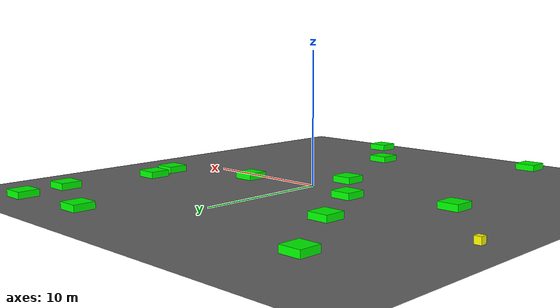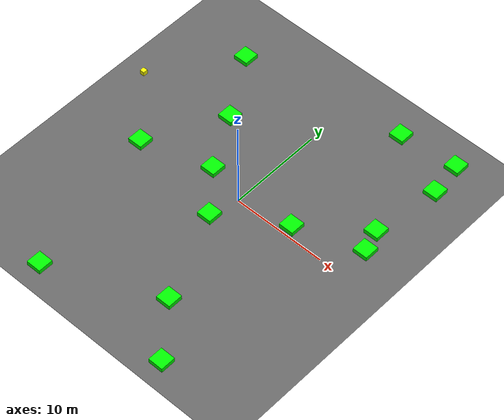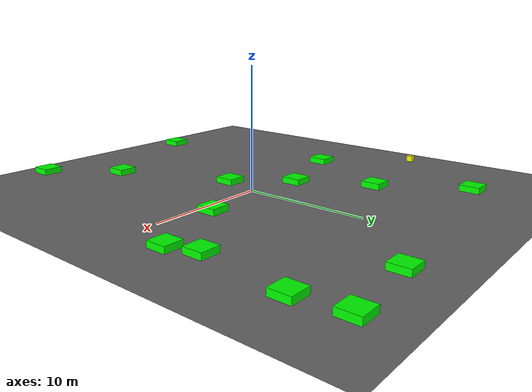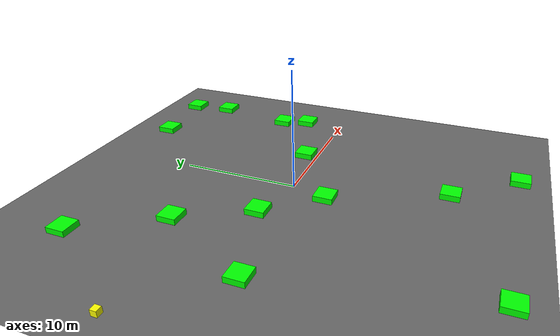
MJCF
<mujoco model="baseline_lvl5_obs14_seed4011">
    <compiler angle="degree" coordinate="local" inertiafromgeom="true"/>
    <option integrator="RK4" timestep="0.01"/>

    <asset>
        <texture builtin="gradient" height="100" rgb1="0.6 0.8 1" rgb2="0 0 0" type="skybox" width="100"/>
        <texture name="floor_texture" type="2d" builtin="checker" width="100" height="100" rgb1="0 0 0" rgb2="0.8 0.8 0.8"/>
        <material name="MatPlane" reflectance="0.5" shininess="1" specular="1" texrepeat="10 10" texture="floor_texture"/>
    </asset>

    <!-- Excluding the contact between the agent and the goal, and the agent and the floor -->
    <contact>
        <exclude body1="agent" body2="goal"/>
        <exclude body1 = "agent" body2 = "floor"/>
    </contact>

    <extension>
        <plugin plugin = "mujoco.pid">
            <instance name = "pid1">
                <config key="kp" value="2"/>
                <config key="ki" value="0"/>
                <config key="kd" value="55"/>
            </instance>
        </plugin>
    </extension>

    <worldbody>
        <light cutoff="100" diffuse="1 1 1" dir="-0 0 -1.3" directional="true" exponent="1" pos="0 0 1.3" specular=".1 .1 .1"/>
        <body name="floor" pos="0 0 0">
            <geom name="floor_geom" type="plane" size="20 20 0.1" material="MatPlane"/>
        </body>

        <!-- Goal -->
        <body name="goal" pos="12.000 -12.000 0">
            <geom name="goal_geom" type="plane" size="0.5 0.5 1" pos="0 0 0" rgba="1 0 0 1"/>
        </body>

        <!-- Agent -->
        <body name="agent" pos="-17.385 5.260 0.25">
            <joint name="j1" type="slide" axis ="1 0 0 "/>
            <joint name="j2" type="slide" axis ="0 1 0 "/>
            <geom name="agent_geom" type="box" size="0.25 0.25 0.250" rgba="1 1 0 1"/>
        </body>

    <body name="obstacle1" pos="-11.598 -1.040 0.250">
      <geom name="obstacle1_geom" type="box"
            size="0.800 0.800 0.250"
            rgba="0 1 0 1"/>
    </body>
    <body name="obstacle2" pos="-11.534 13.390 0.250">
      <geom name="obstacle2_geom" type="box"
            size="0.800 0.800 0.250"
            rgba="0 1 0 1"/>
    </body>
    <body name="obstacle3" pos="12.123 16.597 0.250">
      <geom name="obstacle3_geom" type="box"
            size="0.800 0.800 0.250"
            rgba="0 1 0 1"/>
    </body>
    <body name="obstacle4" pos="12.367 3.490 0.250">
      <geom name="obstacle4_geom" type="box"
            size="0.800 0.800 0.250"
            rgba="0 1 0 1"/>
    </body>
    <body name="obstacle5" pos="7.321 -17.560 0.250">
      <geom name="obstacle5_geom" type="box"
            size="0.800 0.800 0.250"
            rgba="0 1 0 1"/>
    </body>
    <body name="obstacle6" pos="5.607 1.057 0.250">
      <geom name="obstacle6_geom" type="box"
            size="0.800 0.800 0.250"
            rgba="0 1 0 1"/>
    </body>
    <body name="obstacle7" pos="11.623 5.822 0.250">
      <geom name="obstacle7_geom" type="box"
            size="0.800 0.800 0.250"
            rgba="0 1 0 1"/>
    </body>
    <body name="obstacle8" pos="-7.465 6.859 0.250">
      <geom name="obstacle8_geom" type="box"
            size="0.800 0.800 0.250"
            rgba="0 1 0 1"/>
    </body>
    <body name="obstacle9" pos="3.144 -12.358 0.250">
      <geom name="obstacle9_geom" type="box"
            size="0.800 0.800 0.250"
            rgba="0 1 0 1"/>
    </body>
    <body name="obstacle10" pos="-8.066 -17.428 0.250">
      <geom name="obstacle10_geom" type="box"
            size="0.800 0.800 0.250"
            rgba="0 1 0 1"/>
    </body>
    <body name="obstacle11" pos="-0.778 -3.036 0.250">
      <geom name="obstacle11_geom" type="box"
            size="0.800 0.800 0.250"
            rgba="0 1 0 1"/>
    </body>
    <body name="obstacle12" pos="12.619 12.975 0.250">
      <geom name="obstacle12_geom" type="box"
            size="0.800 0.800 0.250"
            rgba="0 1 0 1"/>
    </body>
    <body name="obstacle13" pos="-4.333 1.172 0.250">
      <geom name="obstacle13_geom" type="box"
            size="0.800 0.800 0.250"
            rgba="0 1 0 1"/>
    </body>
    <body name="obstacle14" pos="5.896 16.049 0.250">
      <geom name="obstacle14_geom" type="box"
            size="0.800 0.800 0.250"
            rgba="0 1 0 1"/>
    </body>
    </worldbody>

    <actuator>
        <plugin joint="j1" plugin="mujoco.pid" instance="pid1" />
        <plugin joint="j2" plugin="mujoco.pid" instance="pid1"/>
    </actuator>

  <sensor>
    <distance name="dist1" geom1="agent_geom" geom2="obstacle1_geom" cutoff="1.5"/>
    <distance name="dist2" geom1="agent_geom" geom2="obstacle2_geom" cutoff="1.5"/>
    <distance name="dist3" geom1="agent_geom" geom2="obstacle3_geom" cutoff="1.5"/>
    <distance name="dist4" geom1="agent_geom" geom2="obstacle4_geom" cutoff="1.5"/>
    <distance name="dist5" geom1="agent_geom" geom2="obstacle5_geom" cutoff="1.5"/>
    <distance name="dist6" geom1="agent_geom" geom2="obstacle6_geom" cutoff="1.5"/>
    <distance name="dist7" geom1="agent_geom" geom2="obstacle7_geom" cutoff="1.5"/>
    <distance name="dist8" geom1="agent_geom" geom2="obstacle8_geom" cutoff="1.5"/>
    <distance name="dist9" geom1="agent_geom" geom2="obstacle9_geom" cutoff="1.5"/>
    <distance name="dist10" geom1="agent_geom" geom2="obstacle10_geom" cutoff="1.5"/>
    <distance name="dist11" geom1="agent_geom" geom2="obstacle11_geom" cutoff="1.5"/>
    <distance name="dist12" geom1="agent_geom" geom2="obstacle12_geom" cutoff="1.5"/>
    <distance name="dist13" geom1="agent_geom" geom2="obstacle13_geom" cutoff="1.5"/>
    <distance name="dist14" geom1="agent_geom" geom2="obstacle14_geom" cutoff="1.5"/>
  </sensor>
</mujoco>
